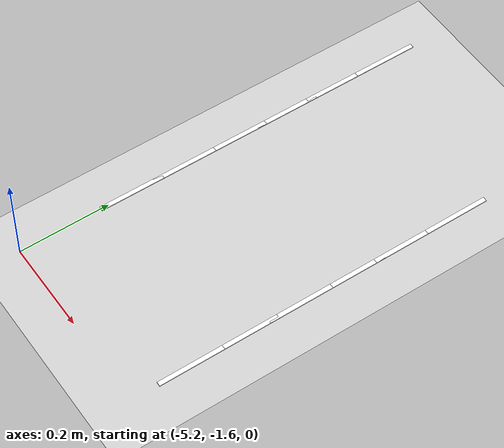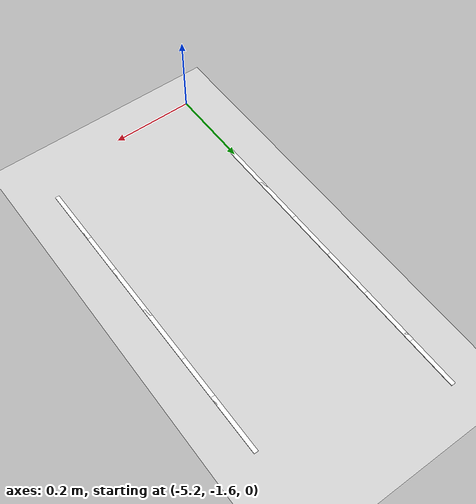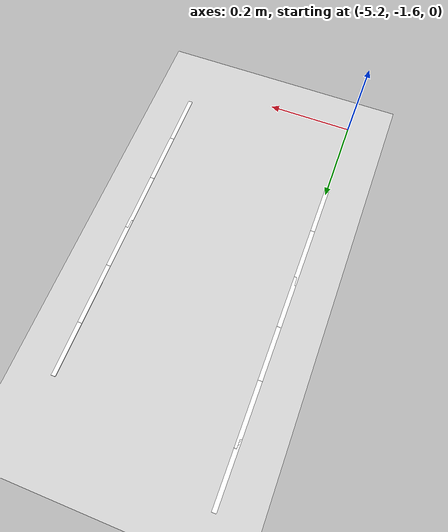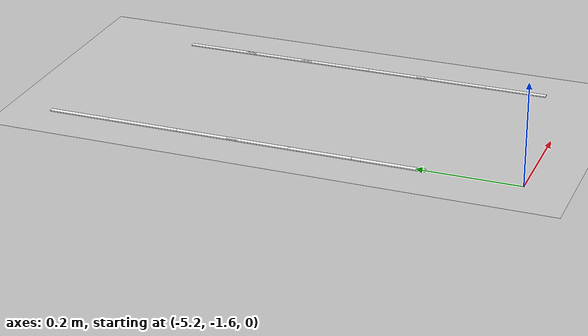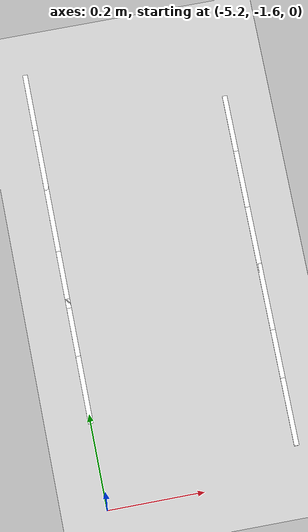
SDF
<sdf version="1.7">
 <world name="default">
  <model name="ground_plane">
   <static>1</static>
   <link name="link">
    <collision name="collision">
     <geometry><plane><normal>0 0 1</normal><size>100 100</size></plane></geometry>
     <surface>
      <contact><collide_bitmask>65535</collide_bitmask></contact>
      <friction><ode><mu>100</mu><mu2>50</mu2></ode></friction>
     </surface>
    </collision>
    <visual name="visual">
     <cast_shadows>0</cast_shadows>
     <geometry><plane><normal>0 0 1</normal><size>100 100</size></plane></geometry>
     <material>
      <script><uri>file://media/materials/scripts/gazebo.material</uri><name>Gazebo/Grey</name></script>
     </material>
    </visual>
   </link>
  </model>
  <model name="lane_line_right_330">
   <static>1</static>
   <link name="link">
    <pose>0 0 -0.004 0 -0 0</pose>
    <visual name="visual">
     <geometry><box><size>0.1424 0.01 0.01</size></box></geometry>
     <material><ambient>1 1 1 1</ambient><diffuse>1 1 1 1</diffuse></material>
    </visual>
    <collision name="collision"><geometry><box><size>0.1424 0.01 0.01</size></box></geometry></collision>
   </link>
   <pose>-5.2 -0.734694 0 0 0 -1.5708</pose>
  </model>
  <model name="lane_line_left_331">
   <static>1</static>
   <link name="link">
    <pose>0 0 -0.004 0 -0 0</pose>
    <visual name="visual">
     <geometry><box><size>0.1424 0.01 0.01</size></box></geometry>
     <material><ambient>1 1 1 1</ambient><diffuse>1 1 1 1</diffuse></material>
    </visual>
    <collision name="collision"><geometry><box><size>0.1424 0.01 0.01</size></box></geometry></collision>
   </link>
   <pose>-4.8 -0.857143 0 0 0 -1.5708</pose>
  </model>
  <model name="lane_line_right_331">
   <static>1</static>
   <link name="link">
    <pose>0 0 -0.004 0 -0 0</pose>
    <visual name="visual">
     <geometry><box><size>0.1424 0.01 0.01</size></box></geometry>
     <material><ambient>1 1 1 1</ambient><diffuse>1 1 1 1</diffuse></material>
    </visual>
    <collision name="collision"><geometry><box><size>0.1424 0.01 0.01</size></box></geometry></collision>
   </link>
   <pose>-5.2 -0.857143 0 0 0 -1.5708</pose>
  </model>
  <model name="lane_line_left_332">
   <static>1</static>
   <link name="link">
    <pose>0 0 -0.004 0 -0 0</pose>
    <visual name="visual">
     <geometry><box><size>0.1424 0.01 0.01</size></box></geometry>
     <material><ambient>1 1 1 1</ambient><diffuse>1 1 1 1</diffuse></material>
    </visual>
    <collision name="collision"><geometry><box><size>0.1424 0.01 0.01</size></box></geometry></collision>
   </link>
   <pose>-4.8 -0.979592 0 0 0 -1.5708</pose>
  </model>
  <model name="lane_line_right_332">
   <static>1</static>
   <link name="link">
    <pose>0 0 -0.004 0 -0 0</pose>
    <visual name="visual">
     <geometry><box><size>0.1424 0.01 0.01</size></box></geometry>
     <material><ambient>1 1 1 1</ambient><diffuse>1 1 1 1</diffuse></material>
    </visual>
    <collision name="collision"><geometry><box><size>0.1424 0.01 0.01</size></box></geometry></collision>
   </link>
   <pose>-5.2 -0.979592 0 0 0 -1.5708</pose>
  </model>
  <model name="lane_line_left_333">
   <static>1</static>
   <link name="link">
    <pose>0 0 -0.004 0 -0 0</pose>
    <visual name="visual">
     <geometry><box><size>0.1424 0.01 0.01</size></box></geometry>
     <material><ambient>1 1 1 1</ambient><diffuse>1 1 1 1</diffuse></material>
    </visual>
    <collision name="collision"><geometry><box><size>0.1424 0.01 0.01</size></box></geometry></collision>
   </link>
   <pose>-4.8 -1.10204 0 0 0 -1.5708</pose>
  </model>
  <model name="lane_line_right_333">
   <static>1</static>
   <link name="link">
    <pose>0 0 -0.004 0 -0 0</pose>
    <visual name="visual">
     <geometry><box><size>0.1424 0.01 0.01</size></box></geometry>
     <material><ambient>1 1 1 1</ambient><diffuse>1 1 1 1</diffuse></material>
    </visual>
    <collision name="collision"><geometry><box><size>0.1424 0.01 0.01</size></box></geometry></collision>
   </link>
   <pose>-5.2 -1.10204 0 0 0 -1.5708</pose>
  </model>
  <model name="lane_line_left_334">
   <static>1</static>
   <link name="link">
    <pose>0 0 -0.004 0 -0 0</pose>
    <visual name="visual">
     <geometry><box><size>0.1424 0.01 0.01</size></box></geometry>
     <material><ambient>1 1 1 1</ambient><diffuse>1 1 1 1</diffuse></material>
    </visual>
    <collision name="collision"><geometry><box><size>0.1424 0.01 0.01</size></box></geometry></collision>
   </link>
   <pose>-4.8 -1.22449 0 0 0 -1.5708</pose>
  </model>
  <model name="lane_line_right_334">
   <static>1</static>
   <link name="link">
    <pose>0 0 -0.004 0 -0 0</pose>
    <visual name="visual">
     <geometry><box><size>0.1424 0.01 0.01</size></box></geometry>
     <material><ambient>1 1 1 1</ambient><diffuse>1 1 1 1</diffuse></material>
    </visual>
    <collision name="collision"><geometry><box><size>0.1424 0.01 0.01</size></box></geometry></collision>
   </link>
   <pose>-5.2 -1.22449 0 0 0 -1.5708</pose>
  </model>
  <model name="lane_line_left_335">
   <static>1</static>
   <link name="link">
    <pose>0 0 -0.004 0 -0 0</pose>
    <visual name="visual">
     <geometry><box><size>0.1424 0.01 0.01</size></box></geometry>
     <material><ambient>1 1 1 1</ambient><diffuse>1 1 1 1</diffuse></material>
    </visual>
    <collision name="collision"><geometry><box><size>0.1424 0.01 0.01</size></box></geometry></collision>
   </link>
   <pose>-4.8 -1.34694 0 0 0 -1.5708</pose>
  </model>
  <model name="lane_line_right_335">
   <static>1</static>
   <link name="link">
    <pose>0 0 -0.004 0 -0 0</pose>
    <visual name="visual">
     <geometry><box><size>0.1424 0.01 0.01</size></box></geometry>
     <material><ambient>1 1 1 1</ambient><diffuse>1 1 1 1</diffuse></material>
    </visual>
    <collision name="collision"><geometry><box><size>0.1424 0.01 0.01</size></box></geometry></collision>
   </link>
   <pose>-5.2 -1.34694 0 0 0 -1.5708</pose>
  </model>
  <model name="lane_line_left_336">
   <static>1</static>
   <link name="link">
    <pose>0 0 -0.004 0 -0 0</pose>
    <visual name="visual">
     <geometry><box><size>0.1424 0.01 0.01</size></box></geometry>
     <material><ambient>1 1 1 1</ambient><diffuse>1 1 1 1</diffuse></material>
    </visual>
    <collision name="collision"><geometry><box><size>0.1424 0.01 0.01</size></box></geometry></collision>
   </link>
   <pose>-4.8 -1.46939 0 0 0 -1.5708</pose>
  </model>
 </world>
</sdf>
